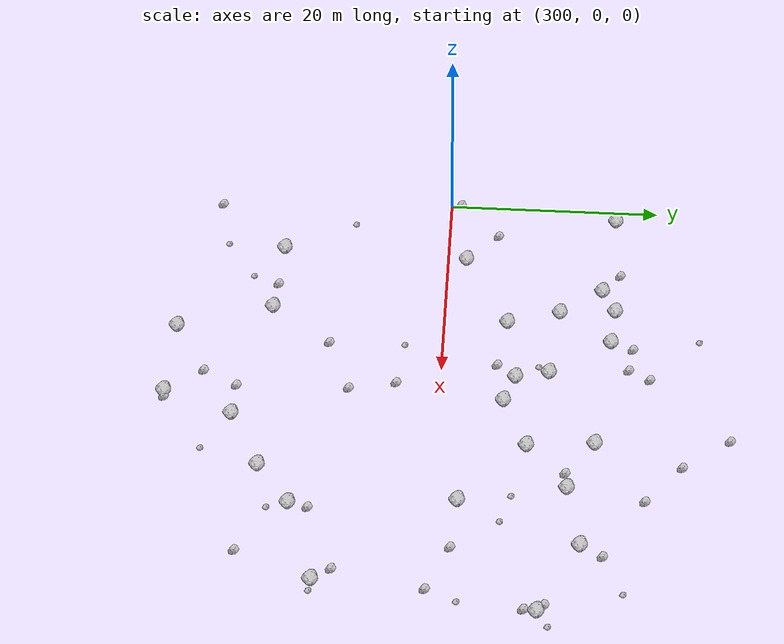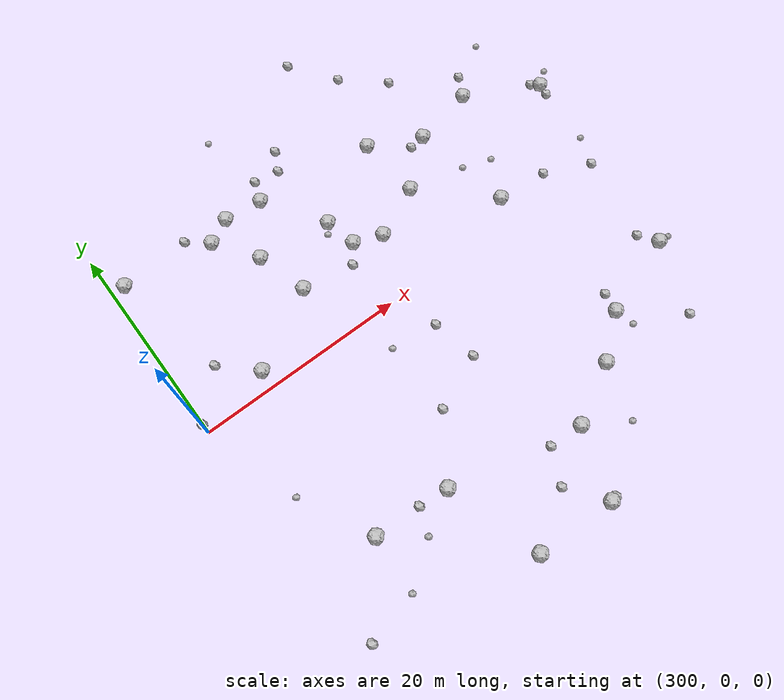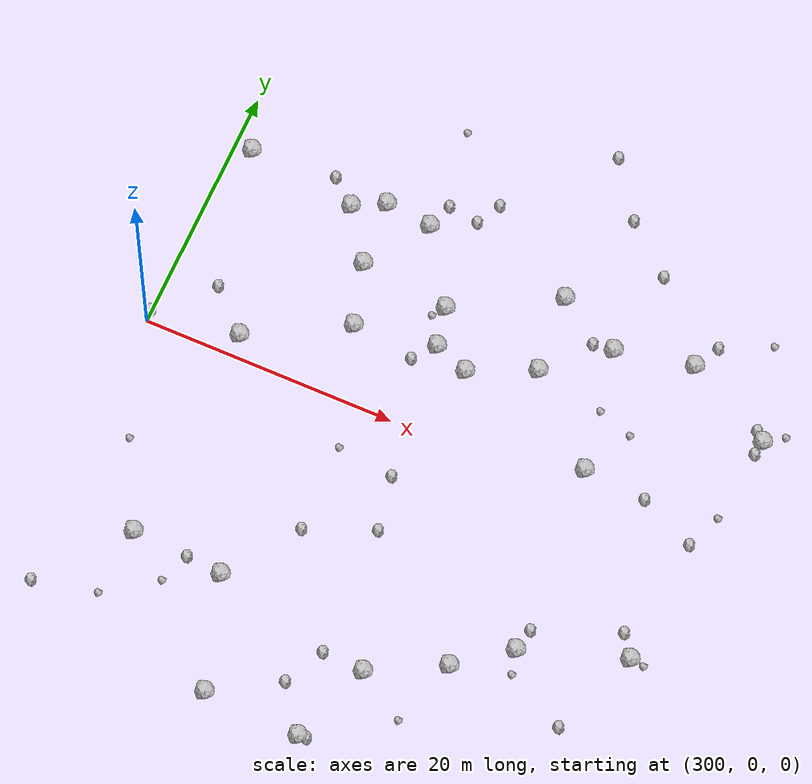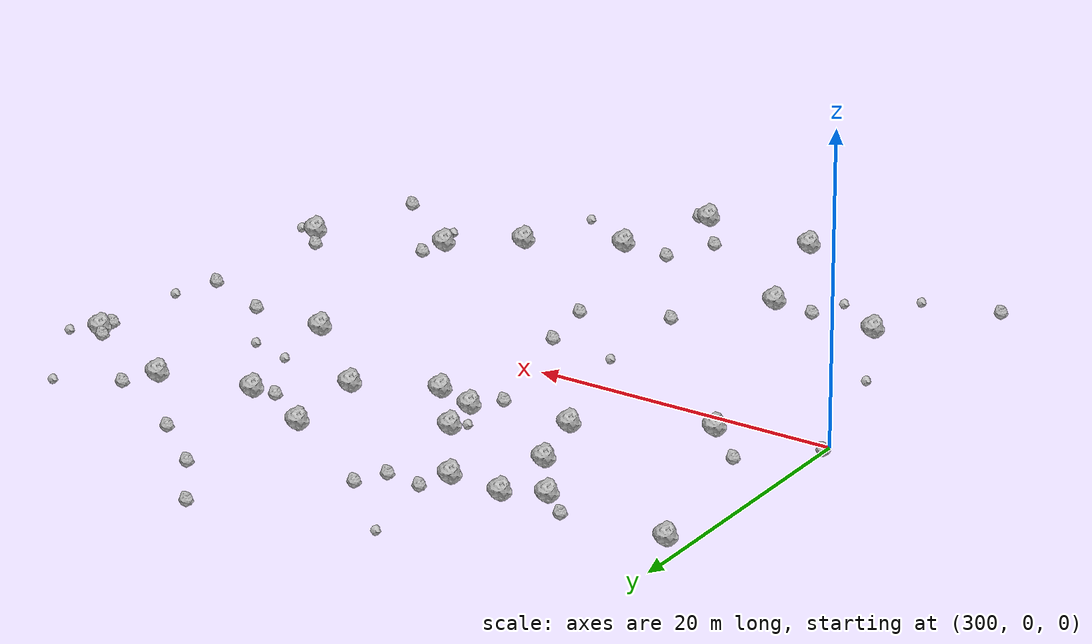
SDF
<sdf version="1.6">
 <world name="default">
  <include><uri>model://sun</uri></include>
  <model name="rock1_8_3">
   <include><uri>model://rock1</uri><pose>312.5702913107325 16.00599032770161 0.5 0 0 0</pose></include>
  </model>
  <model name="rock1_8_4">
   <include><uri>model://rock1</uri><pose>310.15367754461784 14.758151025906685 0.5 0 0 0</pose></include>
  </model>
  <model name="rock1_8_5">
   <include><uri>model://rock1</uri><pose>316.32940304230544 -25.062356256945613 0.5 0 0 0</pose></include>
  </model>
  <model name="rock1_8_6">
   <include><uri>model://rock1</uri><pose>320.7207014736178 6.861835313324171 0.5 0 0 0</pose></include>
  </model>
  <model name="rock1_8_7">
   <include><uri>model://rock1</uri><pose>335.73874959868334 -12.921606658196414 0.5 0 0 0</pose></include>
  </model>
  <model name="rock1_8_8">
   <include><uri>model://rock1</uri><pose>306.3240940630866 -15.791143394667913 0.5 0 0 0</pose></include>
  </model>
  <model name="rock1_8_9">
   <include><uri>model://rock1</uri><pose>326.220677915485 -18.963109375708886 0.5 0 0 0</pose></include>
  </model>
  <model name="rock1_8_10">
   <include><uri>model://rock1</uri><pose>332.89903037547947 11.871998228131595 0.5 0 0 0</pose></include>
  </model>
  <model name="rock1_8_11">
   <include><uri>model://rock1</uri><pose>323.9238404152869 -25.41595750153627 0.5 0 0 0</pose></include>
  </model>
  <model name="rock1_8_12">
   <include><uri>model://rock1</uri><pose>334.7261466925016 2.1444118477360163 0.5 0 0 0</pose></include>
  </model>
  <model name="rock1_8_13">
   <include><uri>model://rock1</uri><pose>316.25711525766013 15.638281845146203 0.5 0 0 0</pose></include>
  </model>
  <model name="rock1_8_14">
   <include><uri>model://rock1</uri><pose>328.42244958039043 8.108464897669577 0.5 0 0 0</pose></include>
  </model>
  <model name="rock1_8_15">
   <include><uri>model://rock1</uri><pose>331.7881263288285 -16.01925963415284 0.5 0 0 0</pose></include>
  </model>
  <model name="rock1_8_16">
   <include><uri>model://rock1</uri><pose>314.34920894073673 5.894937785777678 0.5 0 0 0</pose></include>
  </model>
  <model name="rock1_8_17">
   <include><uri>model://rock1</uri><pose>313.5837613104918 -16.27358024921124 0.5 0 0 0</pose></include>
  </model>
  <model name="rock1_8_18">
   <include><uri>model://rock1</uri><pose>343.65326370787193 -10.218954601589271 0.5 0 0 0</pose></include>
  </model>
  <model name="rock1_8_19">
   <include><uri>model://rock1</uri><pose>312.93912104224904 10.795893129044785 0.5 0 0 0</pose></include>
  </model>
  <model name="rock1_8_20">
   <include><uri>model://rock1</uri><pose>301.4038996068992 15.957173509336904 0.5 0 0 0</pose></include>
  </model>
  <model name="rock1_8_21">
   <include><uri>model://rock1</uri><pose>327.9214117570857 14.299240589065846 0.5 0 0 0</pose></include>
  </model>
  <model name="rock1_8_22">
   <include><uri>model://rock1</uri><pose>323.46699515489416 5.841254982011797 0.5 0 0 0</pose></include>
  </model>
  <model name="rock1_8_23">
   <include><uri>model://rock1</uri><pose>345.899939306003 9.509185522569148 0.5 0 0 0</pose></include>
  </model>
  <model name="rock1_8_24">
   <include><uri>model://rock1</uri><pose>320.0555722698005 9.952426456235933 0.5 0 0 0</pose></include>
  </model>
  <model name="rock1_8_25">
   <include><uri>model://rock1</uri><pose>306.8843036819859 1.7140217854492406 0.5 0 0 0</pose></include>
  </model>
  <model name="rock1_8_26">
   <include><uri>model://rock1</uri><pose>338.9343401009248 13.135039512423383 0.5 0 0 0</pose></include>
  </model>
  <model name="rock2_8_0">
   <include><uri>model://rock2</uri><pose>342.4325505919135 -8.49905944499276 0.3 0 0 0</pose></include>
  </model>
  <model name="rock2_8_1">
   <include><uri>model://rock2</uri><pose>327.01498728318717 26.61346829520079 0.3 0 0 0</pose></include>
  </model>
  <model name="rock2_8_2">
   <include><uri>model://rock2</uri><pose>345.1793166169976 10.186520996203711 0.3 0 0 0</pose></include>
  </model>
  <model name="rock2_8_3">
   <include><uri>model://rock2</uri><pose>303.7640158164876 4.709776236996426 0.3 0 0 0</pose></include>
  </model>
  <model name="rock2_8_4">
   <include><uri>model://rock2</uri><pose>322.71985594630803 -8.425110725303789 0.3 0 0 0</pose></include>
  </model>
  <model name="rock2_8_5">
   <include><uri>model://rock2</uri><pose>317.51264195219494 -10.605233822158926 0.3 0 0 0</pose></include>
  </model>
  <model name="rock2_8_6">
   <include><uri>model://rock2</uri><pose>339.6829353566816 1.7729675975967645 0.3 0 0 0</pose></include>
  </model>
  <model name="rock2_8_7">
   <include><uri>model://rock2</uri><pose>339.9869835688024 15.187027992129117 0.3 0 0 0</pose></include>
  </model>
  <model name="rock2_8_8">
   <include><uri>model://rock2</uri><pose>330.14180474903566 22.252265421446687 0.3 0 0 0</pose></include>
  </model>
  <model name="rock2_8_9">
   <include><uri>model://rock2</uri><pose>299.9597141392916 0.9094917992238862 0.3 0 0 0</pose></include>
  </model>
  <model name="rock2_8_10">
   <include><uri>model://rock2</uri><pose>324.528664429254 -25.331920046446648 0.3 0 0 0</pose></include>
  </model>
  <model name="rock2_8_11">
   <include><uri>model://rock2</uri><pose>345.7195978806547 8.397664387043676 0.3 0 0 0</pose></include>
  </model>
  <model name="rock2_8_12">
   <include><uri>model://rock2</uri><pose>321.36135612974715 -21.976219974548993 0.3 0 0 0</pose></include>
  </model>
  <model name="rock2_8_13">
   <include><uri>model://rock2</uri><pose>316.95048974730526 17.72854376135073 0.3 0 0 0</pose></include>
  </model>
  <model name="rock2_8_14">
   <include><uri>model://rock2</uri><pose>336.09241040300003 -11.093358775983624 0.3 0 0 0</pose></include>
  </model>
  <model name="rock2_8_15">
   <include><uri>model://rock2</uri><pose>340.9392969683562 -17.15974762992744 0.3 0 0 0</pose></include>
  </model>
  <model name="rock2_8_16">
   <include><uri>model://rock2</uri><pose>308.12751826813115 16.47605815334436 0.3 0 0 0</pose></include>
  </model>
  <model name="rock2_8_17">
   <include><uri>model://rock2</uri><pose>344.0994831591665 -0.20907497439282352 0.3 0 0 0</pose></include>
  </model>
  <model name="rock2_8_18">
   <include><uri>model://rock2</uri><pose>331.27861388834003 11.714518325072383 0.3 0 0 0</pose></include>
  </model>
  <model name="rock2_8_19">
   <include><uri>model://rock2</uri><pose>319.35862599509795 5.152547214161466 0.3 0 0 0</pose></include>
  </model>
  <model name="rock2_8_20">
   <include><uri>model://rock2</uri><pose>320.39809983412346 19.313389462175138 0.3 0 0 0</pose></include>
  </model>
  <model name="rock2_8_21">
   <include><uri>model://rock2</uri><pose>322.92204727374985 -18.787173428828414 0.3 0 0 0</pose></include>
  </model>
  <model name="rock2_8_22">
   <include><uri>model://rock2</uri><pose>333.991338027265 18.893740458116945 0.3 0 0 0</pose></include>
  </model>
  <model name="rock2_8_23">
   <include><uri>model://rock2</uri><pose>310.7213991542654 -15.984446402815259 0.3 0 0 0</pose></include>
  </model>
  <model name="rock2_8_24">
   <include><uri>model://rock2</uri><pose>321.87497331101525 -4.08881149512883 0.3 0 0 0</pose></include>
  </model>
  <model name="rock2_8_25">
   <include><uri>model://rock2</uri><pose>319.39821784287324 17.358540489746893 0.3 0 0 0</pose></include>
  </model>
  <model name="rock2_8_26">
   <include><uri>model://rock2</uri><pose>301.0261873270635 -22.274562879303637 0.3 0 0 0</pose></include>
  </model>
  <model name="rock3_8_0">
   <include><uri>model://rock3</uri><pose>347.31626780563613 10.54566810496803 0.2 0 0 0</pose></include>
  </model>
  <model name="rock3_8_1">
   <include><uri>model://rock3</uri><pose>302.85371901801534 -9.15699233826749 0.2 0 0 0</pose></include>
  </model>
  <model name="rock3_8_2">
   <include><uri>model://rock3</uri><pose>309.7967894936416 -18.432967829613744 0.2 0 0 0</pose></include>
  </model>
  <model name="rock3_8_3">
   <include><uri>model://rock3</uri><pose>315.69613708933167 23.9139128227971 0.2 0 0 0</pose></include>
  </model>
  <model name="rock3_8_4">
   <include><uri>model://rock3</uri><pose>336.66984752961696 6.009557071066489 0.2 0 0 0</pose></include>
  </model>
  <model name="rock3_8_5">
   <include><uri>model://rock3</uri><pose>344.69884050377743 -10.340650078526956 0.2 0 0 0</pose></include>
  </model>
  <model name="rock3_8_6">
   <include><uri>model://rock3</uri><pose>317.3658781612379 -3.5696059912875633 0.2 0 0 0</pose></include>
  </model>
  <model name="rock3_8_7">
   <include><uri>model://rock3</uri><pose>319.3212739767767 9.003971707115227 0.2 0 0 0</pose></include>
  </model>
  <model name="rock3_8_8">
   <include><uri>model://rock3</uri><pose>345.18197201437755 2.560708179511458 0.2 0 0 0</pose></include>
  </model>
  <model name="rock3_8_9">
   <include><uri>model://rock3</uri><pose>333.90054853390274 6.934623465058124 0.2 0 0 0</pose></include>
  </model>
  <model name="rock3_8_10">
   <include><uri>model://rock3</uri><pose>330.06742071623887 -21.393277198579884 0.2 0 0 0</pose></include>
  </model>
  <model name="rock3_8_11">
   <include><uri>model://rock3</uri><pose>336.1913993428328 -14.811243367372375 0.2 0 0 0</pose></include>
  </model>
  <model name="rock3_8_12">
   <include><uri>model://rock3</uri><pose>305.93691342094945 -21.2153952939763 0.2 0 0 0</pose></include>
  </model>
  <model name="rock3_8_13">
   <include><uri>model://rock3</uri><pose>343.7333949386521 16.9968580449398 0.2 0 0 0</pose></include>
  </model>
 </world>
</sdf>
